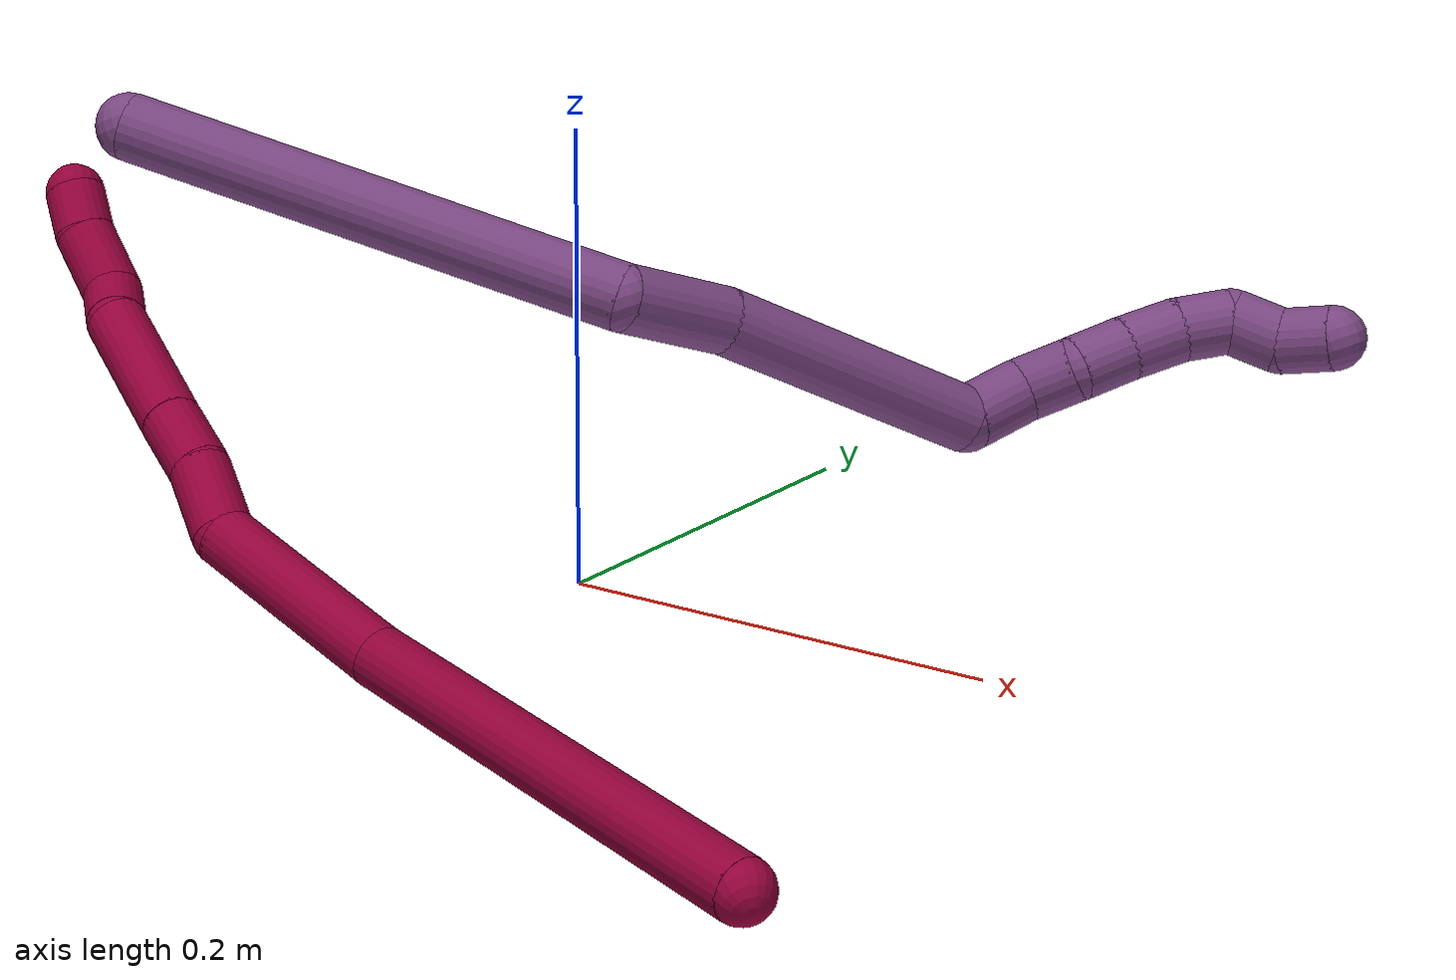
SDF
<sdf version="1.7">
 <world name="default">
  <model name="8">
   <static>0</static>
   <link name="8">
    <collision name="collision-cylinder-e_1_1_4">
     <pose>-0.041468 -0.021652 -0.094192 2.91565 -0.405306 -2.13259</pose>
     <geometry><cylinder><radius>0.0125</radius><length>0.210339</length></cylinder></geometry>
     <surface>
      <friction><ode><mu>1.16</mu><mu2>1.16</mu2><slip1>0</slip1><slip2>0</slip2></ode></friction>
      <contact><ode><kp>1e+06</kp><kd>1</kd><max_vel>0</max_vel><min_depth>0.001</min_depth></ode></contact>
     </surface>
    </collision>
    <visual name="visual-cylinder-e_1_1_4">
     <pose>-0.041468 -0.021652 -0.094192 2.91565 -0.405306 -2.13259</pose>
     <geometry><cylinder><radius>0.0125</radius><length>0.210339</length></cylinder></geometry>
     <material><ambient>0.584314 0 0.227451 1</ambient></material>
    </visual>
    <collision name="collision-cylinder-e_2_4_5">
     <pose>-0.105094 -0.038867 -0.225857 -3.02376 -0.530963 2.71434</pose>
     <geometry><cylinder><radius>0.0125</radius><length>0.087518</length></cylinder></geometry>
     <surface>
      <friction><ode><mu>1.16</mu><mu2>1.16</mu2><slip1>0</slip1><slip2>0</slip2></ode></friction>
      <contact><ode><kp>1e+06</kp><kd>1</kd><max_vel>0</max_vel><min_depth>0.001</min_depth></ode></contact>
     </surface>
    </collision>
    <visual name="visual-cylinder-e_2_4_5">
     <pose>-0.105094 -0.038867 -0.225857 -3.02376 -0.530963 2.71434</pose>
     <geometry><cylinder><radius>0.0125</radius><length>0.087518</length></cylinder></geometry>
     <material><ambient>0.584314 0 0.227451 1</ambient></material>
    </visual>
    <collision name="collision-cylinder-e_3_5_6">
     <pose>-0.128482 -0.030663 -0.279699 -2.91535 -0.073078 0.622623</pose>
     <geometry><cylinder><radius>0.0125</radius><length>0.033686</length></cylinder></geometry>
     <surface>
      <friction><ode><mu>1.16</mu><mu2>1.16</mu2><slip1>0</slip1><slip2>0</slip2></ode></friction>
      <contact><ode><kp>1e+06</kp><kd>1</kd><max_vel>0</max_vel><min_depth>0.001</min_depth></ode></contact>
     </surface>
    </collision>
    <visual name="visual-cylinder-e_3_5_6">
     <pose>-0.128482 -0.030663 -0.279699 -2.91535 -0.073078 0.622623</pose>
     <geometry><cylinder><radius>0.0125</radius><length>0.033686</length></cylinder></geometry>
     <material><ambient>0.584314 0 0.227451 1</ambient></material>
    </visual>
    <collision name="collision-cylinder-e_4_6_7">
     <pose>-0.132684 -0.025239 -0.310254 -3.02535 -0.205173 2.11268</pose>
     <geometry><cylinder><radius>0.0125</radius><length>0.029174</length></cylinder></geometry>
     <surface>
      <friction><ode><mu>1.16</mu><mu2>1.16</mu2><slip1>0</slip1><slip2>0</slip2></ode></friction>
      <contact><ode><kp>1e+06</kp><kd>1</kd><max_vel>0</max_vel><min_depth>0.001</min_depth></ode></contact>
     </surface>
    </collision>
    <visual name="visual-cylinder-e_4_6_7">
     <pose>-0.132684 -0.025239 -0.310254 -3.02535 -0.205173 2.11268</pose>
     <geometry><cylinder><radius>0.0125</radius><length>0.029174</length></cylinder></geometry>
     <material><ambient>0.584314 0 0.227451 1</ambient></material>
    </visual>
    <collision name="collision-cylinder-e_5_7_8">
     <pose>-0.141127 -0.020763 -0.356105 -3.05278 -0.170426 2.18225</pose>
     <geometry><cylinder><radius>0.0125</radius><length>0.064517</length></cylinder></geometry>
     <surface>
      <friction><ode><mu>1.16</mu><mu2>1.16</mu2><slip1>0</slip1><slip2>0</slip2></ode></friction>
      <contact><ode><kp>1e+06</kp><kd>1</kd><max_vel>0</max_vel><min_depth>0.001</min_depth></ode></contact>
     </surface>
    </collision>
    <visual name="visual-cylinder-e_5_7_8">
     <pose>-0.141127 -0.020763 -0.356105 -3.05278 -0.170426 2.18225</pose>
     <geometry><cylinder><radius>0.0125</radius><length>0.064517</length></cylinder></geometry>
     <material><ambient>0.584314 0 0.227451 1</ambient></material>
    </visual>
    <collision name="collision-cylinder-e_6_8_9">
     <pose>-0.145525 -0.019482 -0.399725 3.01354 0.088805 1.21202</pose>
     <geometry><cylinder><radius>0.0125</radius><length>0.024201</length></cylinder></geometry>
     <surface>
      <friction><ode><mu>1.16</mu><mu2>1.16</mu2><slip1>0</slip1><slip2>0</slip2></ode></friction>
      <contact><ode><kp>1e+06</kp><kd>1</kd><max_vel>0</max_vel><min_depth>0.001</min_depth></ode></contact>
     </surface>
    </collision>
    <visual name="visual-cylinder-e_6_8_9">
     <pose>-0.145525 -0.019482 -0.399725 3.01354 0.088805 1.21202</pose>
     <geometry><cylinder><radius>0.0125</radius><length>0.024201</length></cylinder></geometry>
     <material><ambient>0.584314 0 0.227451 1</ambient></material>
    </visual>
    <collision name="collision-cylinder-e_7_9_10">
     <pose>-0.147499 -0.014501 -0.424993 -2.68619 -0.202731 0.827256</pose>
     <geometry><cylinder><radius>0.0125</radius><length>0.030271</length></cylinder></geometry>
     <surface>
      <friction><ode><mu>1.16</mu><mu2>1.16</mu2><slip1>0</slip1><slip2>0</slip2></ode></friction>
      <contact><ode><kp>1e+06</kp><kd>1</kd><max_vel>0</max_vel><min_depth>0.001</min_depth></ode></contact>
     </surface>
    </collision>
    <visual name="visual-cylinder-e_7_9_10">
     <pose>-0.147499 -0.014501 -0.424993 -2.68619 -0.202731 0.827256</pose>
     <geometry><cylinder><radius>0.0125</radius><length>0.030271</length></cylinder></geometry>
     <material><ambient>0.584314 0 0.227451 1</ambient></material>
    </visual>
    <collision name="collision-cylinder-e_8_10_2">
     <pose>-0.150642 -0.003538 -0.447431 -2.68846 -0.009391 0.040733</pose>
     <geometry><cylinder><radius>0.0125</radius><length>0.020295</length></cylinder></geometry>
     <surface>
      <friction><ode><mu>1.16</mu><mu2>1.16</mu2><slip1>0</slip1><slip2>0</slip2></ode></friction>
      <contact><ode><kp>1e+06</kp><kd>1</kd><max_vel>0</max_vel><min_depth>0.001</min_depth></ode></contact>
     </surface>
    </collision>
    <visual name="visual-cylinder-e_8_10_2">
     <pose>-0.150642 -0.003538 -0.447431 -2.68846 -0.009391 0.040733</pose>
     <geometry><cylinder><radius>0.0125</radius><length>0.020295</length></cylinder></geometry>
     <material><ambient>0.584314 0 0.227451 1</ambient></material>
    </visual>
    <collision name="collision-sphere-2">
     <pose>-0.150737 0.000904 -0.456554 0 -0 0</pose>
     <geometry><sphere><radius>0.0125</radius></sphere></geometry>
     <surface>
      <friction><ode><mu>1.16</mu><mu2>1.16</mu2><slip1>0</slip1><slip2>0</slip2></ode></friction>
      <contact><ode><kp>1e+06</kp><kd>1</kd><max_vel>0</max_vel><min_depth>0.001</min_depth></ode></contact>
     </surface>
    </collision>
    <visual name="visual-sphere-2">
     <pose>-0.150737 0.000904 -0.456554 0 -0 0</pose>
     <geometry><sphere><radius>0.0125</radius></sphere></geometry>
     <material><ambient>0.584314 0 0.227451 1</ambient></material>
    </visual>
    <collision name="collision-sphere-10">
     <pose>-0.150546 -0.00798 -0.438308 0 -0 0</pose>
     <geometry><sphere><radius>0.0125</radius></sphere></geometry>
     <surface>
      <friction><ode><mu>1.16</mu><mu2>1.16</mu2><slip1>0</slip1><slip2>0</slip2></ode></friction>
      <contact><ode><kp>1e+06</kp><kd>1</kd><max_vel>0</max_vel><min_depth>0.001</min_depth></ode></contact>
     </surface>
    </collision>
    <visual name="visual-sphere-10">
     <pose>-0.150546 -0.00798 -0.438308 0 -0 0</pose>
     <geometry><sphere><radius>0.0125</radius></sphere></geometry>
     <material><ambient>0.584314 0 0.227451 1</ambient></material>
    </visual>
    <collision name="collision-sphere-9">
     <pose>-0.144451 -0.021022 -0.411679 0 -0 0</pose>
     <geometry><sphere><radius>0.0125</radius></sphere></geometry>
     <surface>
      <friction><ode><mu>1.16</mu><mu2>1.16</mu2><slip1>0</slip1><slip2>0</slip2></ode></friction>
      <contact><ode><kp>1e+06</kp><kd>1</kd><max_vel>0</max_vel><min_depth>0.001</min_depth></ode></contact>
     </surface>
    </collision>
    <visual name="visual-sphere-9">
     <pose>-0.144451 -0.021022 -0.411679 0 -0 0</pose>
     <geometry><sphere><radius>0.0125</radius></sphere></geometry>
     <material><ambient>0.584314 0 0.227451 1</ambient></material>
    </visual>
    <collision name="collision-sphere-4">
     <pose>-0.082936 -0.043304 -0.188384 0 -0 0</pose>
     <geometry><sphere><radius>0.0125</radius></sphere></geometry>
     <surface>
      <friction><ode><mu>1.16</mu><mu2>1.16</mu2><slip1>0</slip1><slip2>0</slip2></ode></friction>
      <contact><ode><kp>1e+06</kp><kd>1</kd><max_vel>0</max_vel><min_depth>0.001</min_depth></ode></contact>
     </surface>
    </collision>
    <visual name="visual-sphere-4">
     <pose>-0.082936 -0.043304 -0.188384 0 -0 0</pose>
     <geometry><sphere><radius>0.0125</radius></sphere></geometry>
     <material><ambient>0.584314 0 0.227451 1</ambient></material>
    </visual>
    <collision name="collision-sphere-1">
     <geometry><sphere><radius>0.0125</radius></sphere></geometry>
     <surface>
      <friction><ode><mu>1.16</mu><mu2>1.16</mu2><slip1>0</slip1><slip2>0</slip2></ode></friction>
      <contact><ode><kp>1e+06</kp><kd>1</kd><max_vel>0</max_vel><min_depth>0.001</min_depth></ode></contact>
     </surface>
    </collision>
    <visual name="visual-sphere-1">
     <geometry><sphere><radius>0.0125</radius></sphere></geometry>
     <material><ambient>0.584314 0 0.227451 1</ambient></material>
    </visual>
    <collision name="collision-sphere-8">
     <pose>-0.146598 -0.017943 -0.387771 0 -0 0</pose>
     <geometry><sphere><radius>0.0125</radius></sphere></geometry>
     <surface>
      <friction><ode><mu>1.16</mu><mu2>1.16</mu2><slip1>0</slip1><slip2>0</slip2></ode></friction>
      <contact><ode><kp>1e+06</kp><kd>1</kd><max_vel>0</max_vel><min_depth>0.001</min_depth></ode></contact>
     </surface>
    </collision>
    <visual name="visual-sphere-8">
     <pose>-0.146598 -0.017943 -0.387771 0 -0 0</pose>
     <geometry><sphere><radius>0.0125</radius></sphere></geometry>
     <material><ambient>0.584314 0 0.227451 1</ambient></material>
    </visual>
    <collision name="collision-sphere-5">
     <pose>-0.127252 -0.034431 -0.263329 0 -0 0</pose>
     <geometry><sphere><radius>0.0125</radius></sphere></geometry>
     <surface>
      <friction><ode><mu>1.16</mu><mu2>1.16</mu2><slip1>0</slip1><slip2>0</slip2></ode></friction>
      <contact><ode><kp>1e+06</kp><kd>1</kd><max_vel>0</max_vel><min_depth>0.001</min_depth></ode></contact>
     </surface>
    </collision>
    <visual name="visual-sphere-5">
     <pose>-0.127252 -0.034431 -0.263329 0 -0 0</pose>
     <geometry><sphere><radius>0.0125</radius></sphere></geometry>
     <material><ambient>0.584314 0 0.227451 1</ambient></material>
    </visual>
    <collision name="collision-sphere-6">
     <pose>-0.129712 -0.026895 -0.29607 0 -0 0</pose>
     <geometry><sphere><radius>0.0125</radius></sphere></geometry>
     <surface>
      <friction><ode><mu>1.16</mu><mu2>1.16</mu2><slip1>0</slip1><slip2>0</slip2></ode></friction>
      <contact><ode><kp>1e+06</kp><kd>1</kd><max_vel>0</max_vel><min_depth>0.001</min_depth></ode></contact>
     </surface>
    </collision>
    <visual name="visual-sphere-6">
     <pose>-0.129712 -0.026895 -0.29607 0 -0 0</pose>
     <geometry><sphere><radius>0.0125</radius></sphere></geometry>
     <material><ambient>0.584314 0 0.227451 1</ambient></material>
    </visual>
    <collision name="collision-sphere-7">
     <pose>-0.135656 -0.023582 -0.324439 0 -0 0</pose>
     <geometry><sphere><radius>0.0125</radius></sphere></geometry>
     <surface>
      <friction><ode><mu>1.16</mu><mu2>1.16</mu2><slip1>0</slip1><slip2>0</slip2></ode></friction>
      <contact><ode><kp>1e+06</kp><kd>1</kd><max_vel>0</max_vel><min_depth>0.001</min_depth></ode></contact>
     </surface>
    </collision>
    <visual name="visual-sphere-7">
     <pose>-0.135656 -0.023582 -0.324439 0 -0 0</pose>
     <geometry><sphere><radius>0.0125</radius></sphere></geometry>
     <material><ambient>0.584314 0 0.227451 1</ambient></material>
    </visual>
    <inertial>
     <pose>-0.092536 -0.024094 -0.225292 0 -0 0</pose>
     <mass>0.5</mass>
     <inertia>
      <ixx>-0.001008</ixx>
      <ixy>0</ixy>
      <ixz>0</ixz>
      <iyy>-2.9e-05</iyy>
      <iyz>0</iyz>
      <izz>0.000459</izz>
     </inertia>
    </inertial>
   </link>
   <pose>0.244578 -0.240315 0.011493 1.95923 -0.110872 0.882996</pose>
  </model>
  <model name="20">
   <static>0</static>
   <link name="20">
    <collision name="collision-cylinder-e_1_1_4">
     <pose>0.071294 0.030074 -0.057323 -2.65842 0.833589 -2.1259</pose>
     <geometry><cylinder><radius>0.0125</radius><length>0.192594</length></cylinder></geometry>
     <surface>
      <friction><ode><mu>1.16</mu><mu2>1.16</mu2><slip1>0</slip1><slip2>0</slip2></ode></friction>
      <contact><ode><kp>1e+06</kp><kd>1</kd><max_vel>0</max_vel><min_depth>0.001</min_depth></ode></contact>
     </surface>
    </collision>
    <visual name="visual-cylinder-e_1_1_4">
     <pose>0.071294 0.030074 -0.057323 -2.65842 0.833589 -2.1259</pose>
     <geometry><cylinder><radius>0.0125</radius><length>0.192594</length></cylinder></geometry>
     <material><ambient>0.478431 0.278431 0.509804 1</ambient></material>
    </visual>
    <collision name="collision-cylinder-e_2_4_5">
     <pose>0.148604 0.078963 -0.124162 -2.03905 0.277967 -0.447403</pose>
     <geometry><cylinder><radius>0.0125</radius><length>0.043852</length></cylinder></geometry>
     <surface>
      <friction><ode><mu>1.16</mu><mu2>1.16</mu2><slip1>0</slip1><slip2>0</slip2></ode></friction>
      <contact><ode><kp>1e+06</kp><kd>1</kd><max_vel>0</max_vel><min_depth>0.001</min_depth></ode></contact>
     </surface>
    </collision>
    <visual name="visual-cylinder-e_2_4_5">
     <pose>0.148604 0.078963 -0.124162 -2.03905 0.277967 -0.447403</pose>
     <geometry><cylinder><radius>0.0125</radius><length>0.043852</length></cylinder></geometry>
     <material><ambient>0.478431 0.278431 0.509804 1</ambient></material>
    </visual>
    <collision name="collision-cylinder-e_3_5_6">
     <pose>0.171997 0.13785 -0.165496 -2.24188 0.327379 -0.659147</pose>
     <geometry><cylinder><radius>0.0125</radius><length>0.108074</length></cylinder></geometry>
     <surface>
      <friction><ode><mu>1.16</mu><mu2>1.16</mu2><slip1>0</slip1><slip2>0</slip2></ode></friction>
      <contact><ode><kp>1e+06</kp><kd>1</kd><max_vel>0</max_vel><min_depth>0.001</min_depth></ode></contact>
     </surface>
    </collision>
    <visual name="visual-cylinder-e_3_5_6">
     <pose>0.171997 0.13785 -0.165496 -2.24188 0.327379 -0.659147</pose>
     <geometry><cylinder><radius>0.0125</radius><length>0.108074</length></cylinder></geometry>
     <material><ambient>0.478431 0.278431 0.509804 1</ambient></material>
    </visual>
    <collision name="collision-cylinder-e_4_6_7">
     <pose>0.195026 0.191088 -0.195807 -1.45684 0.403213 -0.360688</pose>
     <geometry><cylinder><radius>0.0125</radius><length>0.028816</length></cylinder></geometry>
     <surface>
      <friction><ode><mu>1.16</mu><mu2>1.16</mu2><slip1>0</slip1><slip2>0</slip2></ode></friction>
      <contact><ode><kp>1e+06</kp><kd>1</kd><max_vel>0</max_vel><min_depth>0.001</min_depth></ode></contact>
     </surface>
    </collision>
    <visual name="visual-cylinder-e_4_6_7">
     <pose>0.195026 0.191088 -0.195807 -1.45684 0.403213 -0.360688</pose>
     <geometry><cylinder><radius>0.0125</radius><length>0.028816</length></cylinder></geometry>
     <material><ambient>0.478431 0.278431 0.509804 1</ambient></material>
    </visual>
    <collision name="collision-cylinder-e_5_7_8">
     <pose>0.210598 0.208621 -0.193516 -1.39325 1.15021 -0.993722</pose>
     <geometry><cylinder><radius>0.0125</radius><length>0.021732</length></cylinder></geometry>
     <surface>
      <friction><ode><mu>1.16</mu><mu2>1.16</mu2><slip1>0</slip1><slip2>0</slip2></ode></friction>
      <contact><ode><kp>1e+06</kp><kd>1</kd><max_vel>0</max_vel><min_depth>0.001</min_depth></ode></contact>
     </surface>
    </collision>
    <visual name="visual-cylinder-e_5_7_8">
     <pose>0.210598 0.208621 -0.193516 -1.39325 1.15021 -0.993722</pose>
     <geometry><cylinder><radius>0.0125</radius><length>0.021732</length></cylinder></geometry>
     <material><ambient>0.478431 0.278431 0.509804 1</ambient></material>
    </visual>
    <collision name="collision-cylinder-e_6_8_9">
     <pose>0.22733 0.221421 -0.192172 -1.50444 0.678442 -0.637837</pose>
     <geometry><cylinder><radius>0.0125</radius><length>0.021712</length></cylinder></geometry>
     <surface>
      <friction><ode><mu>1.16</mu><mu2>1.16</mu2><slip1>0</slip1><slip2>0</slip2></ode></friction>
      <contact><ode><kp>1e+06</kp><kd>1</kd><max_vel>0</max_vel><min_depth>0.001</min_depth></ode></contact>
     </surface>
    </collision>
    <visual name="visual-cylinder-e_6_8_9">
     <pose>0.22733 0.221421 -0.192172 -1.50444 0.678442 -0.637837</pose>
     <geometry><cylinder><radius>0.0125</radius><length>0.021712</length></cylinder></geometry>
     <material><ambient>0.478431 0.278431 0.509804 1</ambient></material>
    </visual>
    <collision name="collision-cylinder-e_7_9_10">
     <pose>0.241824 0.237965 -0.191486 -1.55535 0.758099 -0.747541</pose>
     <geometry><cylinder><radius>0.0125</radius><length>0.022342</length></cylinder></geometry>
     <surface>
      <friction><ode><mu>1.16</mu><mu2>1.16</mu2><slip1>0</slip1><slip2>0</slip2></ode></friction>
      <contact><ode><kp>1e+06</kp><kd>1</kd><max_vel>0</max_vel><min_depth>0.001</min_depth></ode></contact>
     </surface>
    </collision>
    <visual name="visual-cylinder-e_7_9_10">
     <pose>0.241824 0.237965 -0.191486 -1.55535 0.758099 -0.747541</pose>
     <geometry><cylinder><radius>0.0125</radius><length>0.022342</length></cylinder></geometry>
     <material><ambient>0.478431 0.278431 0.509804 1</ambient></material>
    </visual>
    <collision name="collision-cylinder-e_8_10_11">
     <pose>0.257316 0.252409 -0.192871 -1.80477 0.876009 -1.07064</pose>
     <geometry><cylinder><radius>0.0125</radius><length>0.020338</length></cylinder></geometry>
     <surface>
      <friction><ode><mu>1.16</mu><mu2>1.16</mu2><slip1>0</slip1><slip2>0</slip2></ode></friction>
      <contact><ode><kp>1e+06</kp><kd>1</kd><max_vel>0</max_vel><min_depth>0.001</min_depth></ode></contact>
     </surface>
    </collision>
    <visual name="visual-cylinder-e_8_10_11">
     <pose>0.257316 0.252409 -0.192871 -1.80477 0.876009 -1.07064</pose>
     <geometry><cylinder><radius>0.0125</radius><length>0.020338</length></cylinder></geometry>
     <material><ambient>0.478431 0.278431 0.509804 1</ambient></material>
    </visual>
    <collision name="collision-cylinder-e_9_11_12">
     <pose>0.272575 0.261274 -0.200848 -2.76848 0.820247 -2.32243</pose>
     <geometry><cylinder><radius>0.0125</radius><length>0.020367</length></cylinder></geometry>
     <surface>
      <friction><ode><mu>1.16</mu><mu2>1.16</mu2><slip1>0</slip1><slip2>0</slip2></ode></friction>
      <contact><ode><kp>1e+06</kp><kd>1</kd><max_vel>0</max_vel><min_depth>0.001</min_depth></ode></contact>
     </surface>
    </collision>
    <visual name="visual-cylinder-e_9_11_12">
     <pose>0.272575 0.261274 -0.200848 -2.76848 0.820247 -2.32243</pose>
     <geometry><cylinder><radius>0.0125</radius><length>0.020367</length></cylinder></geometry>
     <material><ambient>0.478431 0.278431 0.509804 1</ambient></material>
    </visual>
    <collision name="collision-cylinder-e_10_12_2">
     <pose>0.289689 0.265583 -0.209579 -2.47598 1.28147 -2.27345</pose>
     <geometry><cylinder><radius>0.0125</radius><length>0.020172</length></cylinder></geometry>
     <surface>
      <friction><ode><mu>1.16</mu><mu2>1.16</mu2><slip1>0</slip1><slip2>0</slip2></ode></friction>
      <contact><ode><kp>1e+06</kp><kd>1</kd><max_vel>0</max_vel><min_depth>0.001</min_depth></ode></contact>
     </surface>
    </collision>
    <visual name="visual-cylinder-e_10_12_2">
     <pose>0.289689 0.265583 -0.209579 -2.47598 1.28147 -2.27345</pose>
     <geometry><cylinder><radius>0.0125</radius><length>0.020172</length></cylinder></geometry>
     <material><ambient>0.478431 0.278431 0.509804 1</ambient></material>
    </visual>
    <collision name="collision-sphere-2">
     <pose>0.299356 0.26736 -0.211842 0 -0 0</pose>
     <geometry><sphere><radius>0.0125</radius></sphere></geometry>
     <surface>
      <friction><ode><mu>1.16</mu><mu2>1.16</mu2><slip1>0</slip1><slip2>0</slip2></ode></friction>
      <contact><ode><kp>1e+06</kp><kd>1</kd><max_vel>0</max_vel><min_depth>0.001</min_depth></ode></contact>
     </surface>
    </collision>
    <visual name="visual-sphere-2">
     <pose>0.299356 0.26736 -0.211842 0 -0 0</pose>
     <geometry><sphere><radius>0.0125</radius></sphere></geometry>
     <material><ambient>0.478431 0.278431 0.509804 1</ambient></material>
    </visual>
    <collision name="collision-sphere-12">
     <pose>0.280022 0.263805 -0.207315 0 -0 0</pose>
     <geometry><sphere><radius>0.0125</radius></sphere></geometry>
     <surface>
      <friction><ode><mu>1.16</mu><mu2>1.16</mu2><slip1>0</slip1><slip2>0</slip2></ode></friction>
      <contact><ode><kp>1e+06</kp><kd>1</kd><max_vel>0</max_vel><min_depth>0.001</min_depth></ode></contact>
     </surface>
    </collision>
    <visual name="visual-sphere-12">
     <pose>0.280022 0.263805 -0.207315 0 -0 0</pose>
     <geometry><sphere><radius>0.0125</radius></sphere></geometry>
     <material><ambient>0.478431 0.278431 0.509804 1</ambient></material>
    </visual>
    <collision name="collision-sphere-11">
     <pose>0.265128 0.258742 -0.19438 0 -0 0</pose>
     <geometry><sphere><radius>0.0125</radius></sphere></geometry>
     <surface>
      <friction><ode><mu>1.16</mu><mu2>1.16</mu2><slip1>0</slip1><slip2>0</slip2></ode></friction>
      <contact><ode><kp>1e+06</kp><kd>1</kd><max_vel>0</max_vel><min_depth>0.001</min_depth></ode></contact>
     </surface>
    </collision>
    <visual name="visual-sphere-11">
     <pose>0.265128 0.258742 -0.19438 0 -0 0</pose>
     <geometry><sphere><radius>0.0125</radius></sphere></geometry>
     <material><ambient>0.478431 0.278431 0.509804 1</ambient></material>
    </visual>
    <collision name="collision-sphere-10">
     <pose>0.249504 0.246076 -0.191361 0 -0 0</pose>
     <geometry><sphere><radius>0.0125</radius></sphere></geometry>
     <surface>
      <friction><ode><mu>1.16</mu><mu2>1.16</mu2><slip1>0</slip1><slip2>0</slip2></ode></friction>
      <contact><ode><kp>1e+06</kp><kd>1</kd><max_vel>0</max_vel><min_depth>0.001</min_depth></ode></contact>
     </surface>
    </collision>
    <visual name="visual-sphere-10">
     <pose>0.249504 0.246076 -0.191361 0 -0 0</pose>
     <geometry><sphere><radius>0.0125</radius></sphere></geometry>
     <material><ambient>0.478431 0.278431 0.509804 1</ambient></material>
    </visual>
    <collision name="collision-sphere-9">
     <pose>0.234143 0.229854 -0.191612 0 -0 0</pose>
     <geometry><sphere><radius>0.0125</radius></sphere></geometry>
     <surface>
      <friction><ode><mu>1.16</mu><mu2>1.16</mu2><slip1>0</slip1><slip2>0</slip2></ode></friction>
      <contact><ode><kp>1e+06</kp><kd>1</kd><max_vel>0</max_vel><min_depth>0.001</min_depth></ode></contact>
     </surface>
    </collision>
    <visual name="visual-sphere-9">
     <pose>0.234143 0.229854 -0.191612 0 -0 0</pose>
     <geometry><sphere><radius>0.0125</radius></sphere></geometry>
     <material><ambient>0.478431 0.278431 0.509804 1</ambient></material>
    </visual>
    <collision name="collision-sphere-4">
     <pose>0.142587 0.060148 -0.114646 0 -0 0</pose>
     <geometry><sphere><radius>0.0125</radius></sphere></geometry>
     <surface>
      <friction><ode><mu>1.16</mu><mu2>1.16</mu2><slip1>0</slip1><slip2>0</slip2></ode></friction>
      <contact><ode><kp>1e+06</kp><kd>1</kd><max_vel>0</max_vel><min_depth>0.001</min_depth></ode></contact>
     </surface>
    </collision>
    <visual name="visual-sphere-4">
     <pose>0.142587 0.060148 -0.114646 0 -0 0</pose>
     <geometry><sphere><radius>0.0125</radius></sphere></geometry>
     <material><ambient>0.478431 0.278431 0.509804 1</ambient></material>
    </visual>
    <collision name="collision-sphere-1">
     <geometry><sphere><radius>0.0125</radius></sphere></geometry>
     <surface>
      <friction><ode><mu>1.16</mu><mu2>1.16</mu2><slip1>0</slip1><slip2>0</slip2></ode></friction>
      <contact><ode><kp>1e+06</kp><kd>1</kd><max_vel>0</max_vel><min_depth>0.001</min_depth></ode></contact>
     </surface>
    </collision>
    <visual name="visual-sphere-1">
     <geometry><sphere><radius>0.0125</radius></sphere></geometry>
     <material><ambient>0.478431 0.278431 0.509804 1</ambient></material>
    </visual>
    <collision name="collision-sphere-8">
     <pose>0.220517 0.212988 -0.192733 0 -0 0</pose>
     <geometry><sphere><radius>0.0125</radius></sphere></geometry>
     <surface>
      <friction><ode><mu>1.16</mu><mu2>1.16</mu2><slip1>0</slip1><slip2>0</slip2></ode></friction>
      <contact><ode><kp>1e+06</kp><kd>1</kd><max_vel>0</max_vel><min_depth>0.001</min_depth></ode></contact>
     </surface>
    </collision>
    <visual name="visual-sphere-8">
     <pose>0.220517 0.212988 -0.192733 0 -0 0</pose>
     <geometry><sphere><radius>0.0125</radius></sphere></geometry>
     <material><ambient>0.478431 0.278431 0.509804 1</ambient></material>
    </visual>
    <collision name="collision-sphere-5">
     <pose>0.15462 0.097778 -0.133678 0 -0 0</pose>
     <geometry><sphere><radius>0.0125</radius></sphere></geometry>
     <surface>
      <friction><ode><mu>1.16</mu><mu2>1.16</mu2><slip1>0</slip1><slip2>0</slip2></ode></friction>
      <contact><ode><kp>1e+06</kp><kd>1</kd><max_vel>0</max_vel><min_depth>0.001</min_depth></ode></contact>
     </surface>
    </collision>
    <visual name="visual-sphere-5">
     <pose>0.15462 0.097778 -0.133678 0 -0 0</pose>
     <geometry><sphere><radius>0.0125</radius></sphere></geometry>
     <material><ambient>0.478431 0.278431 0.509804 1</ambient></material>
    </visual>
    <collision name="collision-sphere-6">
     <pose>0.189373 0.177921 -0.197314 0 -0 0</pose>
     <geometry><sphere><radius>0.0125</radius></sphere></geometry>
     <surface>
      <friction><ode><mu>1.16</mu><mu2>1.16</mu2><slip1>0</slip1><slip2>0</slip2></ode></friction>
      <contact><ode><kp>1e+06</kp><kd>1</kd><max_vel>0</max_vel><min_depth>0.001</min_depth></ode></contact>
     </surface>
    </collision>
    <visual name="visual-sphere-6">
     <pose>0.189373 0.177921 -0.197314 0 -0 0</pose>
     <geometry><sphere><radius>0.0125</radius></sphere></geometry>
     <material><ambient>0.478431 0.278431 0.509804 1</ambient></material>
    </visual>
    <collision name="collision-sphere-7">
     <pose>0.20068 0.204254 -0.1943 0 -0 0</pose>
     <geometry><sphere><radius>0.0125</radius></sphere></geometry>
     <surface>
      <friction><ode><mu>1.16</mu><mu2>1.16</mu2><slip1>0</slip1><slip2>0</slip2></ode></friction>
      <contact><ode><kp>1e+06</kp><kd>1</kd><max_vel>0</max_vel><min_depth>0.001</min_depth></ode></contact>
     </surface>
    </collision>
    <visual name="visual-sphere-7">
     <pose>0.20068 0.204254 -0.1943 0 -0 0</pose>
     <geometry><sphere><radius>0.0125</radius></sphere></geometry>
     <material><ambient>0.478431 0.278431 0.509804 1</ambient></material>
    </visual>
    <inertial>
     <pose>0.151999 0.120259 -0.12982 0 -0 0</pose>
     <mass>0.5</mass>
     <inertia>
      <ixx>-0.000513</ixx>
      <ixy>0</ixy>
      <ixz>0</ixz>
      <iyy>3e-05</iyy>
      <iyz>0</iyz>
      <izz>-0.000794</izz>
     </inertia>
    </inertial>
   </link>
   <pose>-0.030824 -0.229659 0.236137 -0.0335 -0.40459 0.034207</pose>
  </model>
 </world>
</sdf>
